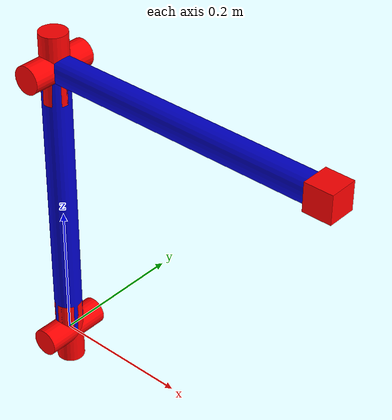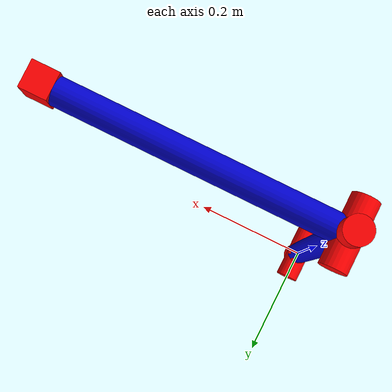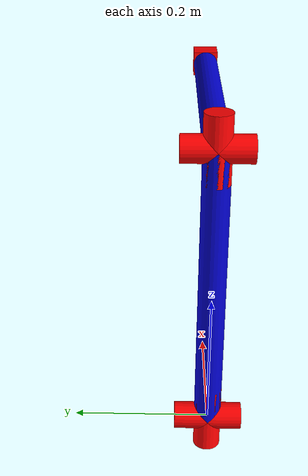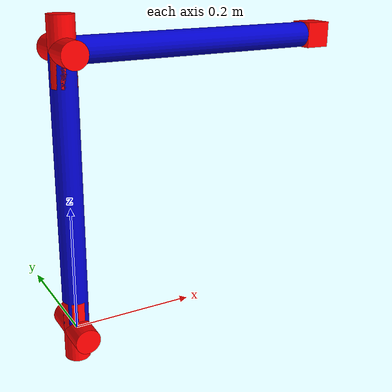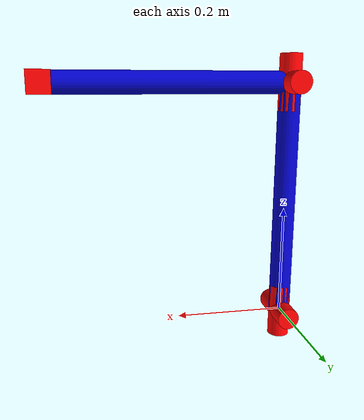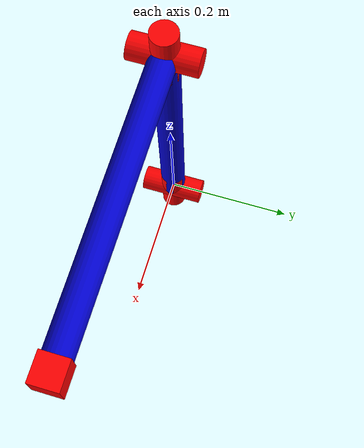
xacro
<?xml version="1.0"?>
<robot xmlns:xacro="http://www.ros.org/wiki/xacro" name="simple">

  <material name="blue">
    <color rgba="0 0 0.8 1"/>
  </material>
  <material name="black">
    <color rgba="0 0 0 1"/>
  </material>
  <material name="red">
    <color rgba="1 0 0 1"/>
  </material>

  <xacro:property name="link_length" value="0.4318" />
  <xacro:property name="dummy_link_length" value="0.1" />
  <xacro:property name="link_radius" value="0.02" />

  <link name="base_link">
    <visual>
      <geometry>
        <cylinder length="${dummy_link_length}" radius="${link_radius}"/>
      </geometry>
      <material name="red"/>
    </visual>
  </link>

  <link name="dummy_link0">

    <visual>
      <origin rpy="${pi/2} 0 0" xyz="0 0 0"/>
      <geometry>
        <cylinder length="${dummy_link_length}" radius="${link_radius}"/>
      </geometry>
      <material name="red"/>
    </visual>
  </link>

  <joint name="shoulder_pivot" type="revolute">
    <parent link="base_link"/>
    <child link="dummy_link0"/>
    <origin rpy="0 0 0" xyz="0 0 0"/>
    <axis xyz="0 0 1"/>
    <limit effort="1000.0" lower="-${pi/2}" upper="${pi/2}" velocity="1000.0"/>
  </joint>

  <link name="arm_link0">
    <visual>
      <origin rpy="${pi/2} 0 0" xyz="0 ${link_length/2} 0"/>
      <geometry>
        <cylinder length="${link_length}" radius="${link_radius}"/>
      </geometry>
      <material name="blue"/>
    </visual>
    <collision>
      <origin rpy="${pi/2} 0 0" xyz="0 ${link_length/2} 0"/>
      <geometry>
        <cylinder length="${link_length}" radius="${link_radius}"/>
      </geometry>
    </collision>

  </link>

  <joint name="shoulder_lift" type="revolute">
    <parent link="dummy_link0"/>
    <child link="arm_link0"/>
    <origin rpy="${pi/2} 0 0" xyz="0 0 0"/>
    <axis xyz="0 0 1"/>
    <limit effort="1000.0" lower="-${pi}" upper="${0}" velocity="1000.0"/>
  </joint>

  <link name="dummy_elbow">
    <visual>
      <origin rpy="0 0 0" xyz="0 0 0"/>
      <geometry>
        <cylinder length="${dummy_link_length}" radius="${link_radius}"/>
      </geometry>
      <material name="red"/>
    </visual>
  </link>

  <joint name="elbow_0" type="revolute">
    <parent link="arm_link0"/>
    <child link="dummy_elbow"/>
    <origin rpy="-${pi/2} 0 0" xyz="0 ${link_length} 0"/>
    <axis xyz="0 0 1"/>
    <limit effort="1000.0" lower="-${0}" upper="${0}" velocity="1000.0"/>
  </joint>

  <link name="arm_link1">
    <visual>
      <origin rpy="0 ${pi/2} 0" xyz="${link_length/2} 0 0"/>
      <geometry>
        <cylinder length="${link_length}" radius="${link_radius}"/>
      </geometry>
      <material name="blue"/>
    </visual>
    <collision>
      <origin rpy="0 ${pi/2} 0" xyz="${link_length/2} 0 0"/>
      <geometry>
        <cylinder length="${link_length}" radius="${link_radius}"/>
      </geometry>
    </collision>

  </link>

  <joint name="elbow_1" type="revolute">
    <parent link="dummy_elbow"/>
    <child link="arm_link1"/>
    <origin rpy="${pi/2} 0 0" xyz="0 0 0"/>
    <axis xyz="0 0 1"/>
    <limit effort="1000.0" lower="-${pi}" upper="${0}" velocity="1000.0"/>
  </joint>

  <link name="dummy_elbow2">
    <visual>
      <origin rpy="0 0 0" xyz="0 0 0"/>
      <geometry>
        <cylinder length="${dummy_link_length}" radius="${link_radius}"/>
      </geometry>
      <material name="red"/>
    </visual>
  </link>

  <joint name="dummy_joint_axis" type="fixed">
    <parent link="arm_link1"/>
    <child link="dummy_elbow2"/>
    <origin rpy="0 0 0" xyz="0 0 0"/>
  </joint>

  <link name="end_effector">
    <visual>
      <origin rpy="0 0 0" xyz="0 0 0"/>
      <geometry>
        <box size="${link_radius*2} ${link_radius*2} ${link_radius*2}"/>
      </geometry>
      <material name="red"/>
    </visual>
  </link>

  <joint name="dummy_ee" type="fixed">
    <parent link="arm_link1"/>
    <child link="end_effector"/>
    <origin rpy="0 0 0" xyz="${link_length} 0 0"/>
  </joint>

</robot>
